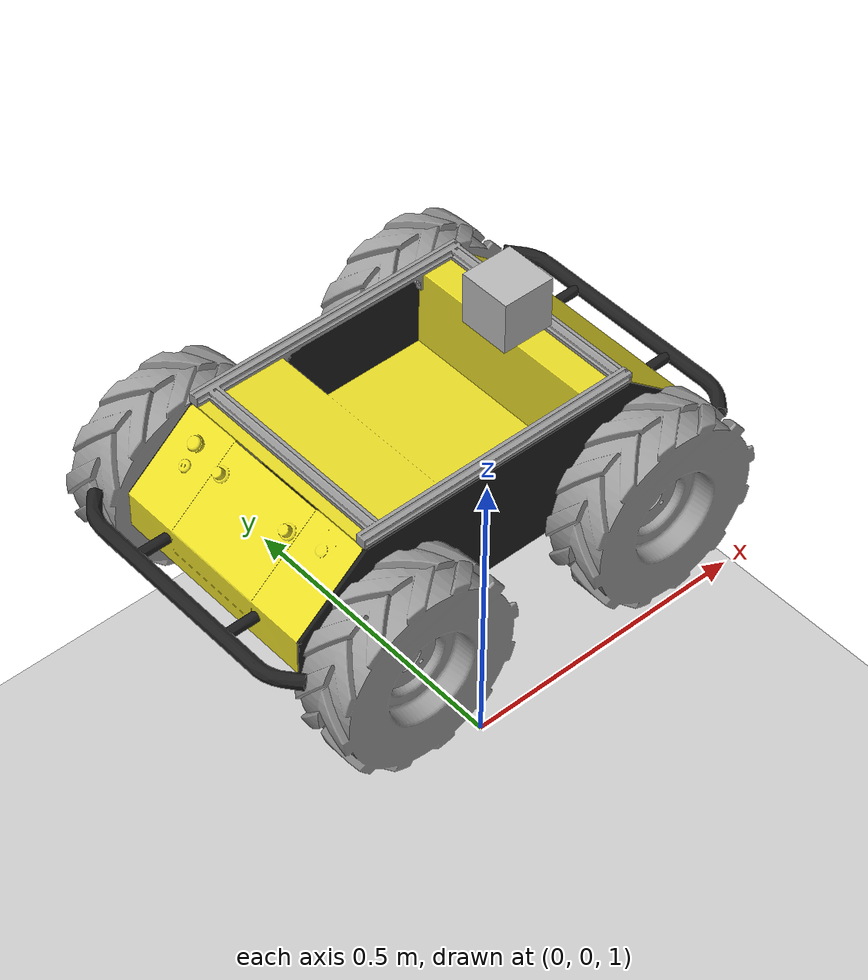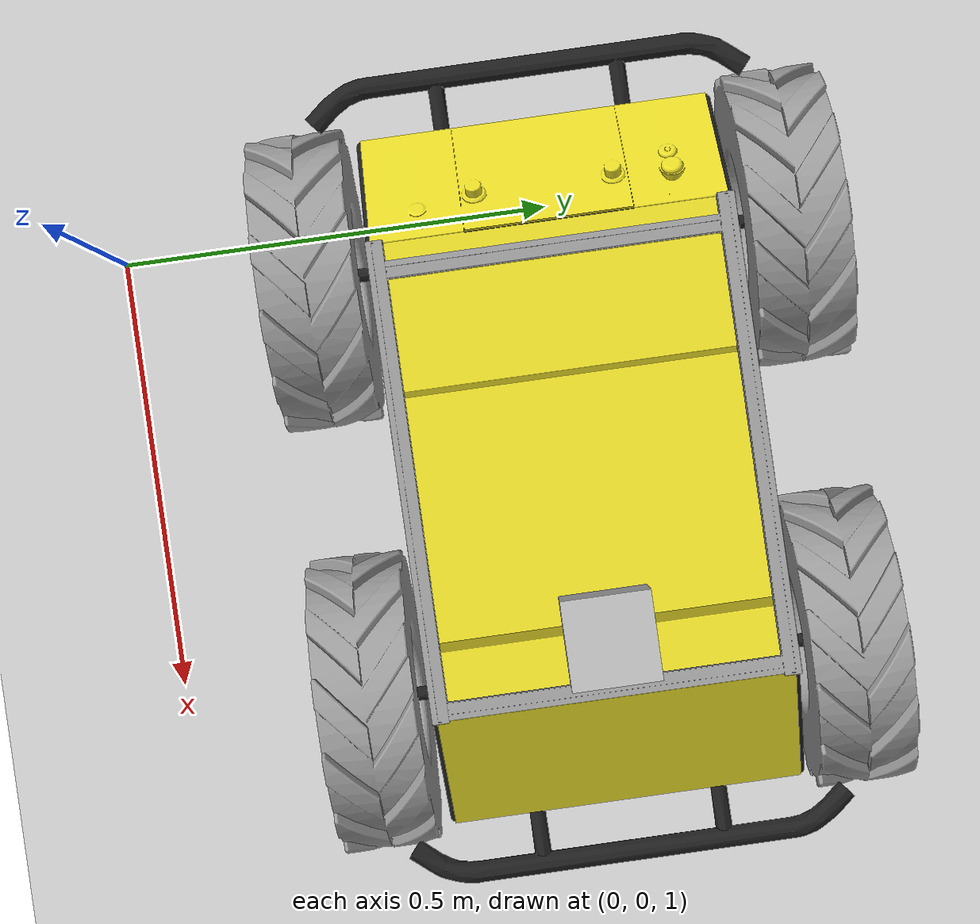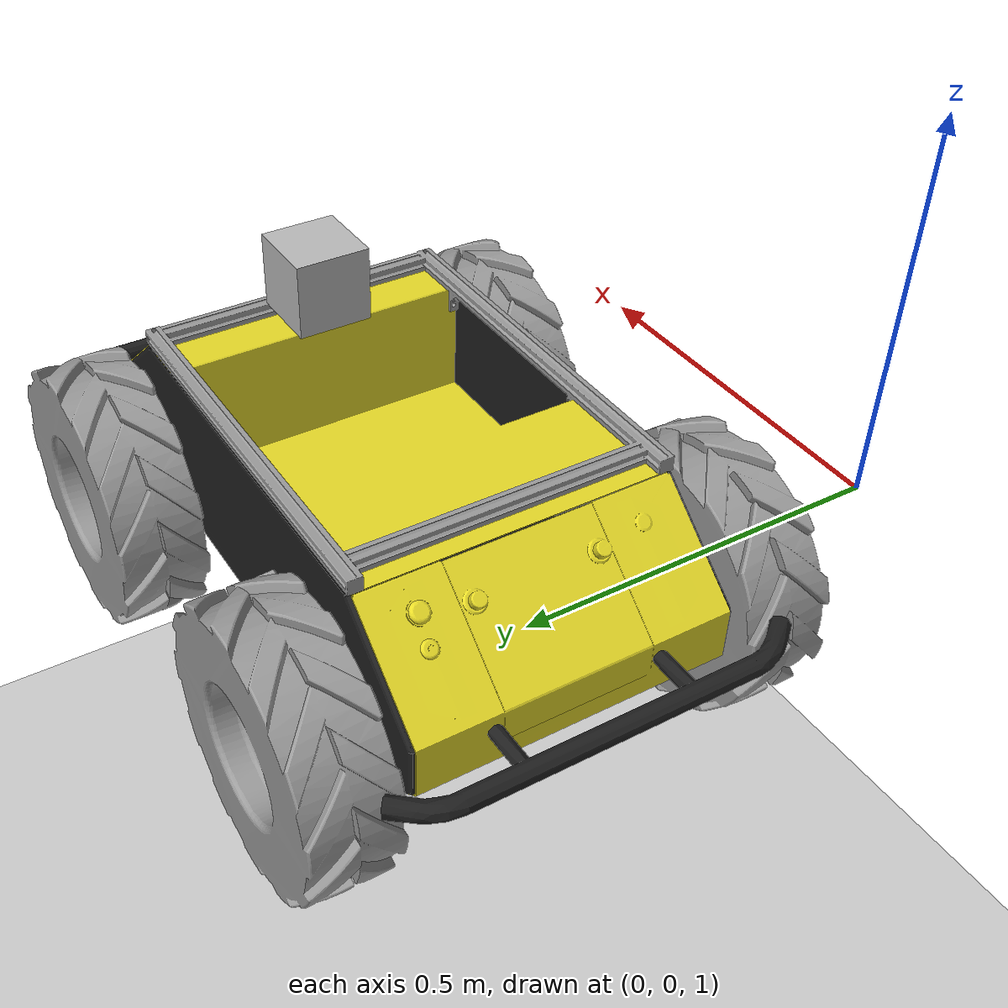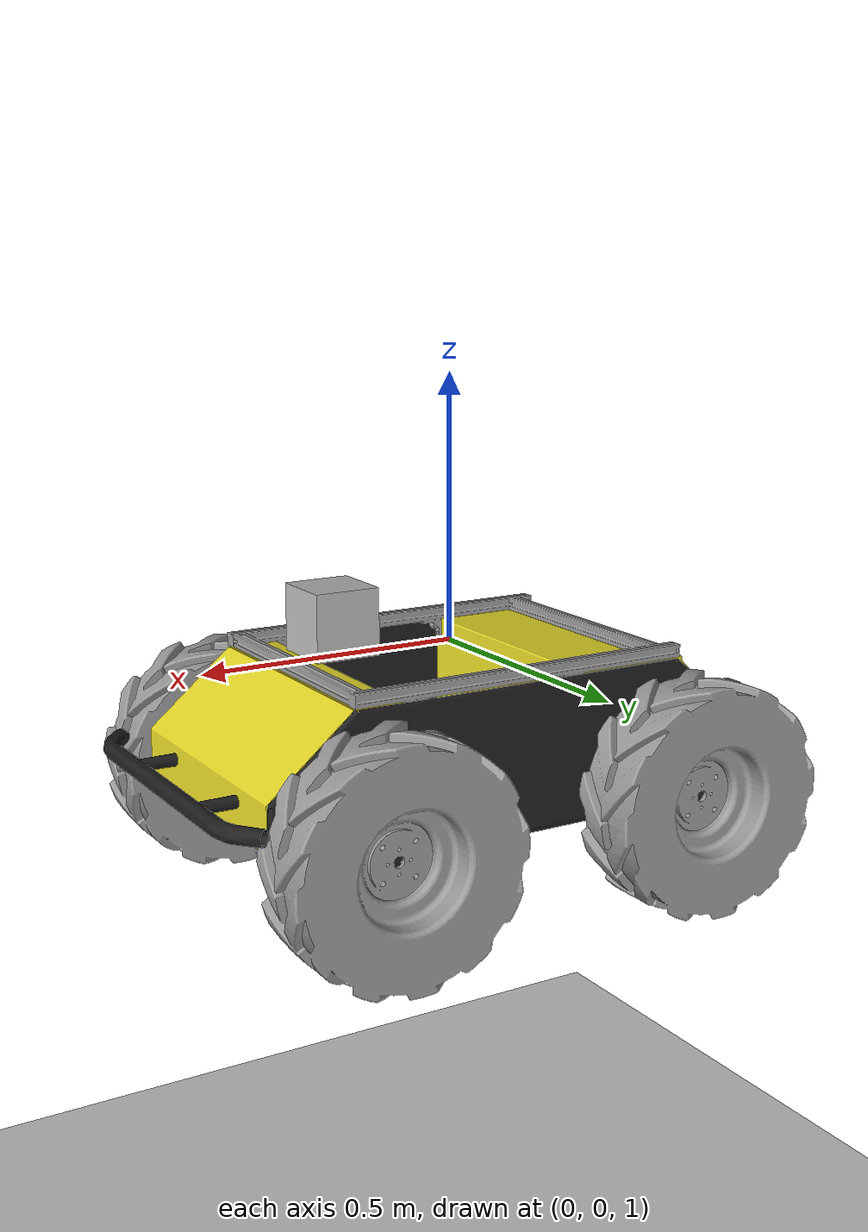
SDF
<?xml version="1.0"?>
<sdf version="1.6">
  <world name="default">
<!-- A global light source -->
		<include>
			<uri>model://sun</uri>
		</include>
    <include>
      <uri>model://ground_plane</uri>
    </include>
<!-- Model -->
    <model name="vehicle">
<include>
  <uri>model://my_husky</uri>
<pose>0.3 0.5 0.9 0 0 0</pose>
</include>
    </model>

  </world>
</sdf>

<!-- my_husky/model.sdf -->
<sdf version="1.5">
  <model name="my_husky">
    <pose>0 0 0.5 0 0 0</pose>

    <!-- Main Chassis -->
     <link name="base_link">
      <!-- Physics -->
      <collision name="collision">
        <pose>0 0 0.1 0 0 0</pose>
        <geometry>
          <box>
            <size>1.0074 0.5709 0.2675</size>
          </box>
        </geometry>
      </collision>
      <inertial>
        <mass>33.855</mass>
        <pose>-0.0856132 -0.000839955 0.238145 0 0 0</pose>
        <inertia>
          <ixx>2.2343</ixx>
          <ixy>-0.023642</ixy>
          <ixz>0.275174</ixz>
          <iyy>3.42518</iyy>
          <iyz>0.00239624</iyz>
          <izz>2.1241</izz>
        </inertia>
      </inertial>
      <!-- Visual -->
      <!-- Base frame -->

      <visual name="base">
        <pose>0 0 0 0 0 0</pose>
        <geometry>
          <mesh>
            <uri>model://husky/meshes/base_link.stl</uri>
          </mesh>
        </geometry>
        <material>
          <script>
            <name>Gazebo/FlatBlack</name>
          </script>
        </material>
      </visual>
      <!-- Top Plate -->
      <visual name="top_plate">
        <pose>0 0 0 0 0 0</pose>
        <geometry>
          <mesh>
            <uri>model://husky/meshes/top_plate.stl</uri>
          </mesh>
        </geometry>
        <material>
          <script>
            <name>Gazebo/Yellow</name>
          </script>
        </material>
      </visual>
      <!-- Front Bumper -->
      <visual name="front_bumper">
        <pose>0.47 0 0.091 0 0 0</pose>
        <geometry>
          <mesh>
            <uri>model://husky/meshes/bumper.stl</uri>
          </mesh>
        </geometry>
        <material>
          <script>
            <name>Gazebo/FlatBlack</name>
          </script>
        </material>
      </visual>
      <!-- Rear Bumper -->
      <visual name="rear_bumper">
        <pose>-0.47 0 0.091 0 0 3.141</pose>
        <geometry>
          <mesh>
            <uri>model://husky/meshes/bumper.stl</uri>
          </mesh>
        </geometry>
        <material>
          <script>
            <name>Gazebo/FlatBlack</name>
          </script>
        </material>
      </visual>
      <!-- User Rail -->
      <visual name="user_rail">
        <pose>0.272 0 0.245 0 0 0</pose>
        <geometry>
          <mesh>
            <uri>model://husky/meshes/user_rail.stl</uri>
          </mesh>
        </geometry>
        <material>
          <script>
            <name>Gazebo/Grey</name>
          </script>
        </material>
      </visual>
    </link>

    <!-- Back Left Wheel -->
    <link name="back_left_wheel">
      <pose>-0.256 0.285475 0.035 0 0 0</pose>
      <inertial>
        <mass>2.6357</mass>
        <pose>0 0 0 0 0 0</pose>
        <inertia>
          <ixx>0.0246688</ixx>
          <ixy>0</ixy>
          <ixz>0</ixz>
          <iyy>0.0246688</iyy>
          <iyz>0</iyz>
          <izz>0.0441058</izz>
        </inertia>
      </inertial>
      <collision name="back_left_wheel_collision">
        <pose>0 0 0 -1.5707 0 0</pose>
        <geometry>
          <cylinder>
            <radius>0.17775</radius>
            <length>0.1143</length>
          </cylinder>
        </geometry>
        <surface>
          <friction>
            <ode>
              <mu>100.0</mu>
              <mu2>100.0</mu2>
              <slip1>0.0</slip1>
              <slip2>0.0</slip2>
            </ode>
          </friction>
        </surface>
      </collision>
      <visual name="back_left_wheel">
        <pose>0 0 0 -3.14159 0 0</pose>
        <geometry>
          <mesh>
            <uri>model://husky/meshes/wheel.stl</uri>
          </mesh>
        </geometry>
        <material>
          <script>
            <name>Gazebo/Grey</name>
          </script>
        </material>
      </visual>
    </link>
    <joint name="back_left_joint" type="revolute">
      <parent>base_link</parent>
      <child>back_left_wheel</child>
      <axis>
        <xyz>0 1 0</xyz>
        <use_parent_model_frame>true</use_parent_model_frame>
      </axis>
      <physics>
        <ode>
          <limit>
            <cfm>0.000000</cfm>
            <erp>0.900000</erp>
          </limit>
        </ode>
      </physics>
    </joint>
    <!-- Back Right Wheel -->
    <link name="back_right_wheel">
      <pose>-0.256 -0.285475 0.035 0 0 0</pose>
      <inertial>
        <mass>2.6357</mass>
        <pose>0 0 0 0 0 0</pose>
        <inertia>
          <ixx>0.0246688</ixx>
          <ixy>0</ixy>
          <ixz>0</ixz>
          <iyy>0.0246688</iyy>
          <iyz>0</iyz>
          <izz>0.0441058</izz>
        </inertia>
      </inertial>
      <collision name="back_right_wheel_collision">
        <pose>0 0 0 -1.5707 0 0</pose>
        <geometry>
          <cylinder>
            <radius>0.17775</radius>
            <length>0.1143</length>
          </cylinder>
        </geometry>
        <surface>
          <friction>
            <ode>
              <mu>100.0</mu>
              <mu2>100.0</mu2>
              <slip1>0.0</slip1>
              <slip2>0.0</slip2>
            </ode>
          </friction>
        </surface>
      </collision>
      <visual name="back_right_wheel">
        <pose>0 0 0 -3.14159 0 0</pose>
        <geometry>
          <mesh>
            <uri>model://husky/meshes/wheel.stl</uri>
          </mesh>
        </geometry>
        <material>
          <script>
            <name>Gazebo/Grey</name>
          </script>
        </material>
      </visual>
    </link>
    <joint name="back_right_joint" type="revolute">
      <parent>base_link</parent>
      <child>back_right_wheel</child>
      <axis>
        <xyz>0 1 0</xyz>
        <use_parent_model_frame>true</use_parent_model_frame>
      </axis>
      <physics>
        <ode>
          <limit>
            <cfm>0.000000</cfm>
            <erp>0.900000</erp>
          </limit>
        </ode>
      </physics>
    </joint>
    <!-- Front Left Wheel -->
    <link name="front_left_wheel">
      <pose>0.256 0.285475 0.035 0 0 0</pose>
      <inertial>
        <mass>2.6357</mass>
        <pose>0 0 0 0 0 0</pose>
        <inertia>
          <ixx>0.0246688</ixx>
          <ixy>0</ixy>
          <ixz>0</ixz>
          <iyy>0.0246688</iyy>
          <iyz>0</iyz>
          <izz>0.0441058</izz>
        </inertia>
      </inertial>
      <collision name="front_left_wheel_collision">
        <pose>0 0 0 -1.5707 0 0</pose>
        <geometry>
          <cylinder>
            <radius>0.17775</radius>
            <length>0.1143</length>
          </cylinder>
        </geometry>
        <surface>
          <friction>
            <ode>
              <mu>100.0</mu>
              <mu2>100.0</mu2>
              <slip1>0.0</slip1>
              <slip2>0.0</slip2>
            </ode>
          </friction>
        </surface>
      </collision>
      <visual name="front_left_wheel">
        <pose>0 0 0 -3.14159 0 0</pose>
        <geometry>
          <mesh>
            <uri>model://husky/meshes/wheel.stl</uri>
          </mesh>
        </geometry>
        <material>
          <script>
            <name>Gazebo/Grey</name>
          </script>
        </material>
      </visual>
    </link>
    <joint name="front_left_joint" type="revolute">
      <parent>base_link</parent>
      <child>front_left_wheel</child>
      <axis>
        <xyz>0 1 0</xyz>
        <use_parent_model_frame>true</use_parent_model_frame>
      </axis>
      <physics>
        <ode>
          <limit>
            <cfm>0.000000</cfm>
            <erp>0.900000</erp>
          </limit>
        </ode>
      </physics>
    </joint>
    <!-- Front Right Wheel -->
    <link name="front_right_wheel">
      <pose>0.256 -0.285475 0.035 0 0 0</pose>
      <inertial>
        <mass>2.6357</mass>
        <pose>0 0 0 0 0 0</pose>
        <inertia>
          <ixx>0.0246688</ixx>
          <ixy>0</ixy>
          <ixz>0</ixz>
          <iyy>0.0246688</iyy>
          <iyz>0</iyz>
          <izz>0.0441058</izz>
        </inertia>
      </inertial>
      <collision name="front_right_wheel_collision">
        <pose>0 0 0 -1.5707 0 0</pose>
        <geometry>
          <cylinder>
            <radius>0.17775</radius>
            <length>0.1143</length>
          </cylinder>
        </geometry>
        <surface>
          <friction>
            <ode>
              <mu>100.0</mu>
              <mu2>100.0</mu2>
              <slip1>0.0</slip1>
              <slip2>0.0</slip2>
            </ode>
          </friction>
        </surface>
      </collision>
      <visual name="front_right_wheel">
        <pose>0 0 0 -3.14159 0 0</pose>
        <geometry>
          <mesh>
            <uri>model://husky/meshes/wheel.stl</uri>
          </mesh>
        </geometry>
        <material>
          <script>
            <name>Gazebo/Grey</name>
          </script>
        </material>
      </visual>
    </link>
    <joint name="front_right_joint" type="revolute">
      <parent>base_link</parent>
      <child>front_right_wheel</child>
      <axis>
        <xyz>0 1 0</xyz>
        <use_parent_model_frame>true</use_parent_model_frame>
      </axis>
      <physics>
        <ode>
          <limit>
            <cfm>0.000000</cfm>
            <erp>0.900000</erp>
          </limit>
        </ode>
      </physics>
    </joint>

    <!-- My Camera -->

    <link name="cam_link">
<pose>0.2 0 0.3 0 0 0</pose>
<visual name="this_cam">
	<geometry>
	  <box>
            <size>0.1 0.1 0.1</size>
          </box>
	</geometry>
</visual>

    <sensor type="gpu_ray" name="head_hokuyo_sensor">
      <pose>0 0 0 0 0 0</pose>
      <visualize>true</visualize>
      <update_rate>40</update_rate>
      <ray>
        <scan>
          <horizontal>
            <samples>720</samples>
            <resolution>1</resolution>
            <min_angle>-1.570796</min_angle>
            <max_angle>1.570796</max_angle>
          </horizontal>
        </scan>
        <range>
          <min>0.10</min>
          <max>30.0</max>
          <resolution>0.01</resolution>
        </range>
        <noise>
          <type>gaussian</type>
          <mean>0.0</mean>
          <stddev>0.01</stddev>
        </noise>
      </ray>
      <plugin name="gazebo_ros_head_hokuyo_controller" filename="libgazebo_ros_gpu_laser.so">
        <topicName>/rrbot/laser/scan</topicName>
        <frameName>base_link</frameName>
      </plugin>
    </sensor>

    <sensor type="camera" name="camera1">
      <update_rate>30.0</update_rate>
      <camera name="head">
        <horizontal_fov>1.3962634</horizontal_fov>
        <image>
          <width>800</width>
          <height>800</height>
          <format>R8G8B8</format>
        </image>
        <clip>
          <near>0.02</near>
          <far>300</far>
        </clip>
        <noise>
          <type>gaussian</type>
          <!-- Noise is sampled independently per pixel on each frame.
               That pixel's noise value is added to each of its color
               channels, which at that point lie in the range [0,1]. -->
          <mean>0.0</mean>
          <stddev>0.007</stddev>
        </noise>
      </camera>
   <visualize>true</visualize>
      <plugin name="camera_controller" filename="libgazebo_ros_camera.so">
        <alwaysOn>true</alwaysOn>
        <updateRate>0.0</updateRate>
        <cameraName>rrbot/camera1</cameraName>
        <imageTopicName>image_raw</imageTopicName>
        <cameraInfoTopicName>camera_info</cameraInfoTopicName>
        <frameName>camera_link</frameName>
        <hackBaseline>0.07</hackBaseline>
        <distortionK1>0.0</distortionK1>
        <distortionK2>0.0</distortionK2>
        <distortionK3>0.0</distortionK3>
        <distortionT1>0.0</distortionT1>
        <distortionT2>0.0</distortionT2>
      </plugin>
    </sensor>
  </link>

    <joint name="mycam_joint" type="fixed">
      <parent>base_link</parent>
      <child>cam_link</child>
    </joint>

  <plugin name="skid_steer_drive_controller" filename="libgazebo_ros_skid_steer_drive.so">
    <updateRate>100.0</updateRate>
    <robotNamespace>/</robotNamespace>
    <leftFrontJoint>front_left_joint</leftFrontJoint>
    <rightFrontJoint>front_right_joint</rightFrontJoint>
    <leftRearJoint>back_left_joint</leftRearJoint>
    <rightRearJoint>back_right_joint</rightRearJoint>

    <wheelSeparation>0.5709</wheelSeparation>
    <wheelDiameter>0.3555</wheelDiameter>

    <robotBaseFrame>base_link</robotBaseFrame>

   <torque>100</torque>
    <topicName>cmd_vel</topicName>
    <commandTopic>cmd_vel</commandTopic>
    <broadcastTF>true</broadcastTF>
  </plugin>

  </model>
</sdf>
